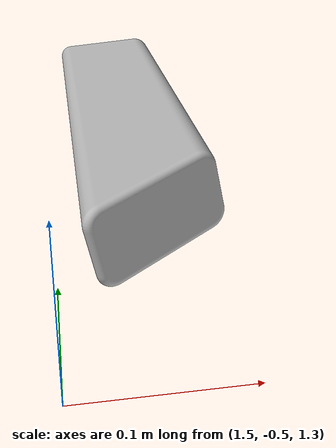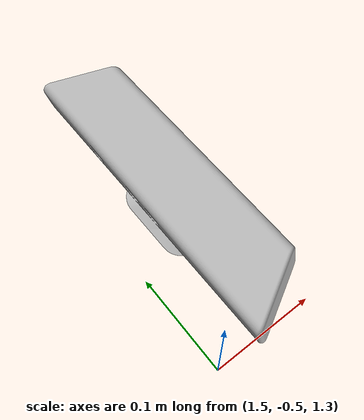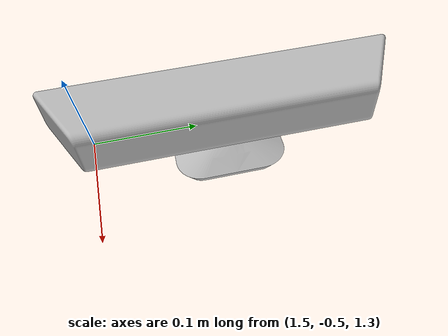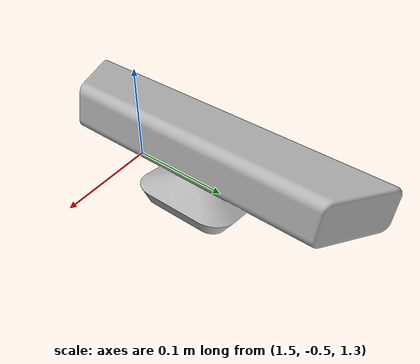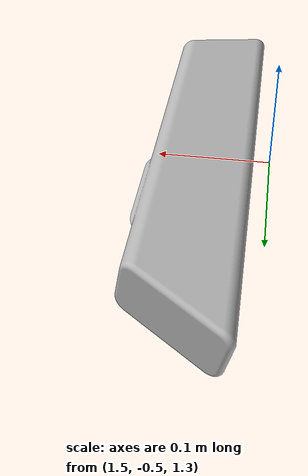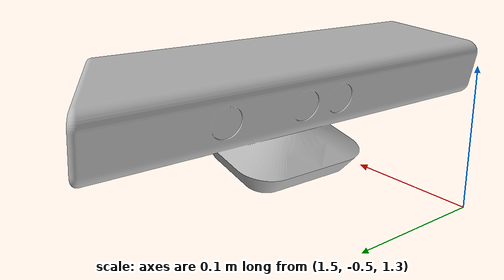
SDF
<sdf version="1.6">
 <world name="default">
  <light name="sun" type="directional">
   <pose>0 0 10 0 -0 0</pose>
   <diffuse>0.8 0.8 0.8 1</diffuse>
   <specular>0.2 0.2 0.2 1</specular>
   <attenuation>
    <range>1000</range>
    <constant>0.9</constant>
    <linear>0.01</linear>
    <quadratic>0.001</quadratic>
   </attenuation>
   <direction>-0.5 0.1 -0.9</direction>
  </light>
  <model name="world"><static>1</static><link name="world"/></model>
  <model name="ground_plane">
   <static>1</static>
   <link name="link">
    <collision name="collision">
     <geometry><plane><normal>0 0 1</normal><size>100 100</size></plane></geometry>
     <surface>
      <contact><collide_bitmask>65535</collide_bitmask></contact>
      <friction><ode><mu>100</mu><mu2>50</mu2></ode></friction>
     </surface>
    </collision>
    <visual name="visual">
     <cast_shadows>0</cast_shadows>
     <geometry><plane><normal>0 0 1</normal><size>100 100</size></plane></geometry>
     <material>
      <script><uri>file://media/materials/scripts/gazebo.material</uri><name>Gazebo/Grey</name></script>
     </material>
    </visual>
   </link>
  </model>
  <gravity>0 0 -9.8</gravity>
  <magnetic_field>6e-06 2.3e-05 -4.2e-05</magnetic_field>
  <atmosphere type="adiabatic"/>
  <physics name="default_physics" default="0" type="ode">
   <max_step_size>0.001</max_step_size>
   <real_time_factor>1</real_time_factor>
   <real_time_update_rate>1000</real_time_update_rate>
  </physics>
  <scene><ambient>0.4 0.4 0.4 1</ambient><background>0.7 0.7 0.7 1</background><shadows>1</shadows></scene>
  <spherical_coordinates>
   <surface_model>EARTH_WGS84</surface_model>
   <latitude_deg>0</latitude_deg>
   <longitude_deg>0</longitude_deg>
   <elevation>0</elevation>
   <heading_deg>0</heading_deg>
  </spherical_coordinates>
  <model name="kinect">
   <link name="link">
    <inertial>
     <mass>0.1</mass>
     <inertia><ixx>1</ixx><ixy>0</ixy><ixz>0</ixz><iyy>1</iyy><iyz>0</iyz><izz>1</izz></inertia>
    </inertial>
    <sensor name="camera" type="depth">
     <update_rate>20</update_rate>
     <camera name="__default__">
      <horizontal_fov>1.0472</horizontal_fov>
      <image><width>640</width><height>480</height><format>R8G8B8</format></image>
      <clip><near>0.05</near><far>3</far></clip>
     </camera>
     <plugin name="camera_plugin" filename="libgazebo_ros_openni_kinect.so">
      <baseline>0.2</baseline>
      <alwaysOn>1</alwaysOn>
      <updateRate>0.0</updateRate>
      <cameraName>camera_ir</cameraName>
      <imageTopicName>/camera/color/image_raw</imageTopicName>
      <cameraInfoTopicName>/camera/color/camera_info</cameraInfoTopicName>
      <depthImageTopicName>/camera/depth/image_raw</depthImageTopicName>
      <depthImageCameraInfoTopicName>/camera/depth/camera_info</depthImageCameraInfoTopicName>
      <pointCloudTopicName>/camera/depth/points</pointCloudTopicName>
      <frameName>camera_link</frameName>
      <pointCloudCutoff>0.5</pointCloudCutoff>
      <pointCloudCutoffMax>3.0</pointCloudCutoffMax>
      <distortionK1>0</distortionK1>
      <distortionK2>0</distortionK2>
      <distortionK3>0</distortionK3>
      <distortionT1>0</distortionT1>
      <distortionT2>0</distortionT2>
      <CxPrime>0</CxPrime>
      <Cx>0</Cx>
      <Cy>0</Cy>
      <focalLength>0</focalLength>
      <hackBaseline>0</hackBaseline>
     </plugin>
    </sensor>
    <visual name="visual">
     <geometry><mesh><uri>model://kinect/meshes/kinect.dae</uri></mesh></geometry>
     <material><shader type="pixel"/></material>
    </visual>
    <collision name="collision">
     <geometry><box><size>0.073 0.276 0.072</size></box></geometry>
     <surface>
      <friction>
       <ode><mu>1</mu><mu2>1</mu2><fdir1>0 0 0</fdir1><slip1>0</slip1><slip2>0</slip2></ode>
       <torsional>
        <coefficient>1</coefficient>
        <patch_radius>0</patch_radius>
        <surface_radius>0</surface_radius>
        <use_patch_radius>1</use_patch_radius>
        <ode><slip>0</slip></ode>
       </torsional>
      </friction>
      <bounce><restitution_coefficient>0</restitution_coefficient><threshold>1e+06</threshold></bounce>
      <contact>
       <collide_without_contact>0</collide_without_contact>
       <collide_without_contact_bitmask>1</collide_without_contact_bitmask>
       <collide_bitmask>1</collide_bitmask>
       <ode>
        <soft_cfm>0</soft_cfm>
        <soft_erp>0.2</soft_erp>
        <kp>1e+13</kp>
        <kd>1</kd>
        <max_vel>0.01</max_vel>
        <min_depth>0</min_depth>
       </ode>
       <bullet>
        <split_impulse>1</split_impulse>
        <split_impulse_penetration_threshold>-0.01</split_impulse_penetration_threshold>
        <soft_cfm>0</soft_cfm>
        <soft_erp>0.2</soft_erp>
        <kp>1e+13</kp>
        <kd>1</kd>
       </bullet>
      </contact>
     </surface>
    </collision>
   </link>
   <static>1</static>
   <pose>1.51542 -0.381635 1.39271 3e-06 0.211392 3.1405</pose>
  </model>
 </world>
</sdf>
